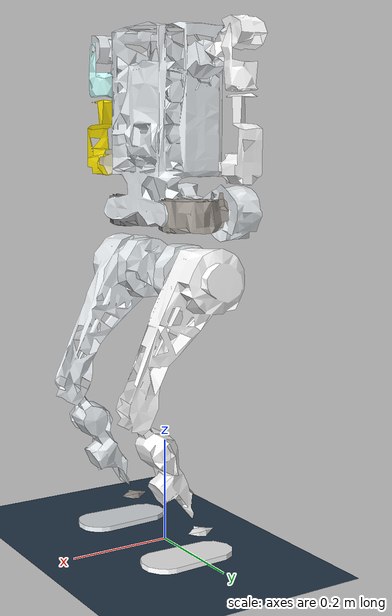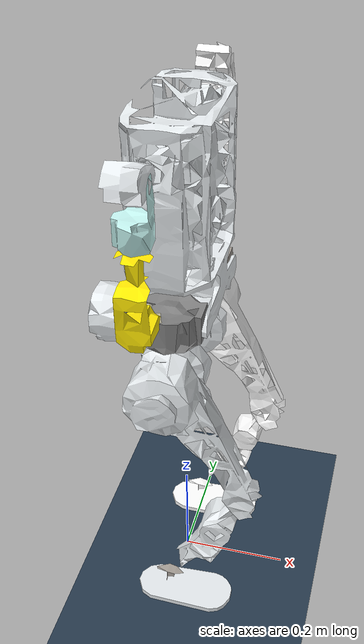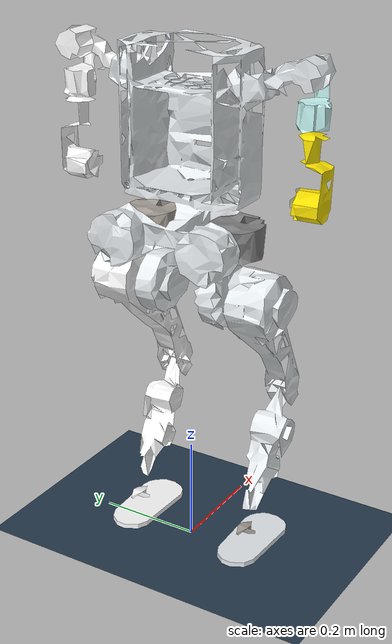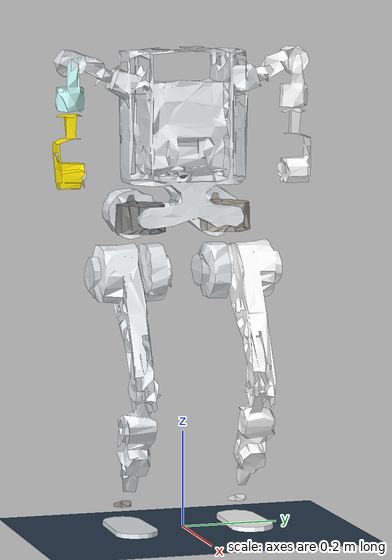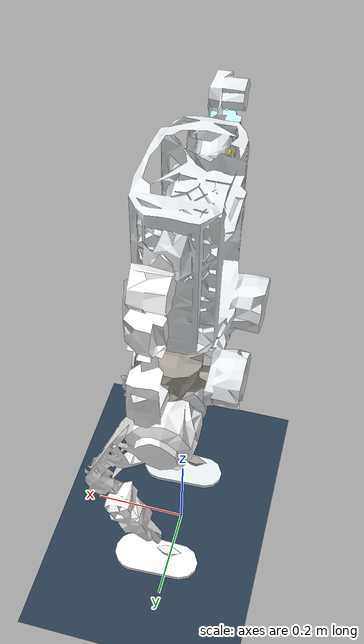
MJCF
<?xml version="1.0" ?>
<mujoco model="urdf_model">
  <default>
    <joint limited="true"/>
    <motor ctrllimited="true"/>
    <geom condim="4" contype="1" conaffinity="15" solref="0.001 2" friction="0.9 0.2 0.2"/>
    <equality solref="0.001 2"/>
  </default>
  <compiler angle="radian" coordinate="local" meshdir="meshes"/>
  <option gravity="0 0 -9.81" timestep="0.002" iterations="50" solver="Newton" tolerance="1e-10"/>
  <asset>
    <texture type="skybox" builtin="gradient" rgb1="0.3 0.5 0.7" rgb2="0 0 0" width="512" height="512"/>
    <texture name="texplane" type="2d" builtin="checker" rgb1=".2 .3 .4" rgb2=".1 0.15 0.2" width="512" height="512" mark="cross" markrgb=".8 .8 .8"/>
    <material name="matplane" reflectance="0." texture="texplane" texrepeat="1 1" texuniform="true"/>
    <mesh name="base_link.STL" file="base_link.STL"/>
    <mesh name="l_arm_shoulder_pitch_Link.STL" file="l_arm_shoulder_pitch_Link.STL"/>
    <mesh name="l_arm_shoulder_roll_Link.STL" file="l_arm_shoulder_roll_Link.STL"/>
    <mesh name="l_arm_shoulder_yaw_Link.STL" file="l_arm_shoulder_yaw_Link.STL"/>
    <mesh name="l_arm_elbow_Link.STL" file="l_arm_elbow_Link.STL"/>
    <mesh name="r_arm_shoulder_pitch_Link.STL" file="r_arm_shoulder_pitch_Link.STL"/>
    <mesh name="r_arm_shoulder_roll_Link.STL" file="r_arm_shoulder_roll_Link.STL"/>
    <mesh name="r_arm_shoulder_yaw_Link.STL" file="r_arm_shoulder_yaw_Link.STL"/>
    <mesh name="r_arm_elbow_Link.STL" file="r_arm_elbow_Link.STL"/>
    <mesh name="l_leg_hip_roll_Link.STL" file="l_leg_hip_roll_Link.STL"/>
    <mesh name="l_leg_hip_yaw_Link.STL" file="l_leg_hip_yaw_Link.STL"/>
    <mesh name="l_leg_hip_pitch_Link.STL" file="l_leg_hip_pitch_Link.STL"/>
    <mesh name="l_leg_knee_Link.STL" file="l_leg_knee_Link.STL"/>
    <mesh name="l_leg_ankle_pitch_Link.STL" file="l_leg_ankle_pitch_Link.STL"/>
    <mesh name="l_leg_ankle_roll_Link.STL" file="l_leg_ankle_roll_Link.STL"/>
    <mesh name="r_leg_hip_roll_Link.STL" file="r_leg_hip_roll_Link.STL"/>
    <mesh name="r_leg_hip_yaw_Link.STL" file="r_leg_hip_yaw_Link.STL"/>
    <mesh name="r_leg_hip_pitch_Link.STL" file="r_leg_hip_pitch_Link.STL"/>
    <mesh name="r_leg_knee_Link.STL" file="r_leg_knee_Link.STL"/>
    <mesh name="r_leg_ankle_pitch_Link.STL" file="r_leg_ankle_pitch_Link.STL"/>
    <mesh name="r_leg_ankle_roll_Link.STL" file="r_leg_ankle_roll_Link.STL"/>
  </asset>
  <worldbody>
    <geom name="floor" type="plane" pos="0.01 0 0" size="10 10 0.1" material="matplane"/>
    <light directional="true" diffuse=".4 .4 .4" specular="0.1 0.1 0.1" pos="0 0 5.0" dir="0 0 -1" castshadow="false"/>
    <light directional="true" diffuse=".6 .6 .6" specular="0.2 0.2 0.2" pos="0 0 4" dir="0 0 -1"/>
    <!-- .73 -> close to ground -->
    <body name="base_link" pos="0 0 0.73">
      <site name="imu_site" pos="0 0 0" size="0.01"/>
      <freejoint name="root"/>
      <inertial mass="5.7651" diaginertia="0.020053 0.014582 0.013124" pos="-0.026899 -1.898e-06 0.035918" quat="0 0 0 1"/>
      <geom name="base_link_visual" type="mesh" mesh="base_link.STL" rgba="0.89804 0.91765 0.92941 1"/>
      <body name="l_arm_shoulder_pitch_Link" pos="0.0 0.16535 0.20168" euler="-1.2217 0.0 0.0">
        <inertial mass="0.47485" diaginertia="0.00026491 0.00023165 0.00018067" pos="-0.0032277 -0.00090287 0.064029" quat="0 0 0 1"/>
        <geom name="l_arm_shoulder_pitch_Link_visual" type="mesh" mesh="l_arm_shoulder_pitch_Link.STL" rgba="1 1 1 1"/>
        <body name="l_arm_shoulder_roll_Link" pos="0.0 0.0 0.07625" euler="1.2217 0.0 0.0">
          <inertial mass="0.369997353872883" diaginertia="0.000197558683212289 0.00020014685176238 0.000160207650697516" pos="0.00482434461878539 -0.000218754304780355 -0.066684892346818" quat="0 0 0 1"/>
          <geom name="l_arm_shoulder_roll_Link_visual" type="mesh" mesh="l_arm_shoulder_roll_Link.STL" rgba="1 1 1 1"/>
          <body name="l_arm_shoulder_yaw_Link" pos="0.0 0.0 -0.108" euler="0.0 0.0 0.0">
            <inertial mass="0.385684351005629" diaginertia="0.000140770233725746 0.000170456017896524 0.000126959258320037" pos="-4.03282683863471e-05 0.00245809993860069 -0.0964013469128064" quat="0 0 0 1"/>
            <geom name="l_arm_shoulder_yaw_Link_visual" type="mesh" mesh="l_arm_shoulder_yaw_Link.STL" rgba="1 1 1 1"/>
            <body name="l_arm_elbow_Link" pos="0.0 -0.017 -0.11875" euler="0.0 0.0 0.0">
              <inertial mass="0.0234686345431745" diaginertia="4.69343397566853E-06 9.07836938758881E-06 5.08242714541202E-06" pos="0.000783882641962441 -0.0071164610235743 -0.000187670615894142" quat="0 0 0 1"/>
              <geom name="l_arm_elbow_Link_visual" type="mesh" mesh="l_arm_elbow_Link.STL" rgba="1 1 1 1"/>
            </body>
          </body>
        </body>
      </body>
      <body name="r_arm_shoulder_pitch_Link" pos="0.0 -0.16535 0.20168" euler="1.2217 0.0 0.0">
        <inertial mass="0.474849451126101" diaginertia="0.000264909282657534 0.000231649340648057 0.000180674893290091" pos="-0.00322766219363702 0.000902867126619522 0.0640292363653914" quat="0 0 0 1"/>
        <geom name="r_arm_shoulder_pitch_Link_visual" type="mesh" mesh="r_arm_shoulder_pitch_Link.STL" rgba="0.898039215686275 0.917647058823529 0.929411764705882 1"/>
        <body name="r_arm_shoulder_roll_Link" pos="0.0 0.0 0.07625" euler="-1.2217 0.0 0.0">
          <inertial mass="0.369997409547943" diaginertia="0.000197558689735899 0.000200146864120328 0.000160207663265554" pos="0.00482435004857312 0.000218646457870841 -0.0666848884784403" quat="0 0 0 1"/>
          <geom name="r_arm_shoulder_roll_Link_visual" type="mesh" mesh="r_arm_shoulder_roll_Link.STL" rgba="0.780392156862745 0.972549019607843 0.956862745098039 1"/>
          <body name="r_arm_shoulder_yaw_Link" pos="0.0 0.0 -0.108" euler="0.0 0.0 0.0">
            <inertial mass="0.38568" diaginertia="0.00014077 0.00017046 0.00012696" pos="-4.033e-05 -0.0024581 -0.096401" quat="0 0 0 1"/>
            <geom name="r_arm_shoulder_yaw_Link_visual" type="mesh" mesh="r_arm_shoulder_yaw_Link.STL" rgba="1 0.90588 0 1"/>
            <body name="r_arm_elbow_Link" pos="0.0 0.017 -0.11875" euler="0.0 0.0 0.0">
              <inertial mass="0.0234686345431746" diaginertia="4.69343397566855E-06 9.07836938758883E-06 5.08242714541201E-06" pos="0.000783882643357436 0.00711646102274963 -0.000187670617232349" quat="0 0 0 1"/>
              <geom name="r_arm_elbow_Link_visual" type="mesh" mesh="r_arm_elbow_Link.STL" rgba="0.972549019607843 0.945098039215686 0.780392156862745 1"/>
            </body>
          </body>
        </body>
      </body>
      <body name="l_leg_hip_roll_Link" pos="-0.0792 0.09002 -0.085" euler="0.0 0.0 0.0">
        <inertial mass="1.2237" diaginertia="0.0010875 0.0012014 0.0021103" pos="0.073997 -2.6118e-05 -0.00038831" quat="0 0 0 1"/>
        <geom name="l_leg_hip_roll_Link_visual" type="mesh" mesh="l_leg_hip_roll_Link.STL" rgba="0.64706 0.61961 0.58824 1"/>
        <joint name="l_leg_hip_roll_joint" type="hinge" axis="1.0 0.0 0.0" range="-0.3 1" damping="1" frictionloss="0.1"/>
        <body name="l_leg_hip_yaw_Link" pos="0.0815 0.0 -0.0375" euler="0.0 0.0 0.0">
          <inertial mass="1.5439" diaginertia="0.0016181 0.0028764 0.0014519" pos="0.00018298 -0.018275 -0.069994" quat="0 0 0 1"/>
          <geom name="l_leg_hip_yaw_Link_visual" type="mesh" mesh="l_leg_hip_yaw_Link.STL" rgba="0.89804 0.91765 0.92941 1"/>
          <joint name="l_leg_hip_yaw_joint" type="hinge" axis="0.0 0.0 1.0" range="-0.75 1.05" damping="1" frictionloss="0.1"/>
          <body name="l_leg_hip_pitch_Link" pos="0.0 0.0 -0.076" euler="0.0 -0.5235987755982988 0.0">
            <inertial mass="2.63780166885626" diaginertia="0.0128050639410327 0.0146659167630542 0.00218142025359868" pos="0.00263050346808996 0.0505924691116392 -0.0509281264870309" quat="0 0 0 1"/>
            <geom name="l_leg_hip_pitch_Link_visual" type="mesh" mesh="l_leg_hip_pitch_Link.STL" rgba="1 1 1 1"/>
            <joint name="l_leg_hip_pitch_joint" type="hinge" axis="0.0 1.0 0.0" range="-0.98 2.02" damping="1" frictionloss="0.1"/>
            <body name="l_leg_knee_Link" pos="0.0 0.032659 -0.27" euler="0.0 1.0471975511965976 0.0">
              <inertial mass="1.34567623230749" diaginertia="0.00225057945909996 0.0022436430421998 0.000463767068680579" pos="0.00266770031269203 0.00221957096227114 -0.128036168256414" quat="0 0 0 1"/>
              <geom name="l_leg_knee_Link_visual" type="mesh" mesh="l_leg_knee_Link.STL" rgba="1 1 1 1"/>
              <joint name="l_leg_knee_joint" type="hinge" axis="0.0 1.0 0.0" range="-0.96 0.96" damping="1" frictionloss="0.1"/>
              <body name="l_leg_ankle_pitch_Link" pos="0.0 0.0 -0.28" euler="0.0 -0.5235987755982988 0.0">
                <inertial mass="0.0899541151447192" diaginertia="1.16237302815817E-05 1.42974136786799E-05 2.19294687658168E-05" pos="0.0010416057050221 3.86596726853483e-09 -9.72771641016834e-10" quat="0 0 0 1"/>
                <geom name="l_leg_ankle_pitch_Link_visual" type="mesh" mesh="l_leg_ankle_pitch_Link.STL" rgba="1 1 1 1"/>
                <joint name="l_leg_ankle_pitch_joint" type="hinge" axis="0.0 1.0 0.0" range="-0.28 1.08" damping="1" frictionloss="0.1"/>
                <body name="l_leg_ankle_roll_Link" pos="0.0 0.0 0.0" euler="0.0 0.0 0.0">
                  <inertial mass="0.442108383473458" diaginertia="0.000179440452962887 0.000724129860482909 0.000870339094674059" pos="0.00956351706341918 2.52051269337139e-05 -0.0277821418441356" quat="0 0 0 1"/>
                  <geom name="l_leg_ankle_roll_Link_visual" type="mesh" mesh="l_leg_ankle_roll_Link.STL" rgba="1 1 1 1"/>
                  <joint name="l_leg_ankle_roll_joint" type="hinge" axis="1.0 0.0 0.0" range="-0.5 0.5" damping="1" frictionloss="0.1"/>
                </body>
              </body>
            </body>
          </body>
        </body>
      </body>
      <body name="r_leg_hip_roll_Link" pos="-0.0792 -0.08998 -0.085" euler="0.0 0.0 0.0">
        <inertial mass="1.2237" diaginertia="0.0010875 0.0012014 0.0021103" pos="0.073997 -2.6118e-05 -0.00038831" quat="0 0 0 1"/>
        <geom name="r_leg_hip_roll_Link_visual" type="mesh" mesh="r_leg_hip_roll_Link.STL" rgba="0.49804 0.49804 0.49804 1"/>
        <joint name="r_leg_hip_roll_joint" type="hinge" axis="1.0 0.0 0.0" range="-1 0.3" damping="1" frictionloss="0.1"/>
        <body name="r_leg_hip_yaw_Link" pos="0.0815 0.0 -0.0375" euler="0.0 0.0 0.0">
          <inertial mass="1.5439" diaginertia="0.0016183 0.0028766 0.0014515" pos="0.00023924 0.018241 -0.069997" quat="0 0 0 1"/>
          <geom name="r_leg_hip_yaw_Link_visual" type="mesh" mesh="r_leg_hip_yaw_Link.STL" rgba="0.89804 0.91765 0.92941 1"/>
          <joint name="r_leg_hip_yaw_joint" type="hinge" axis="0.0 0.0 1.0" range="-1.05 0.75" damping="1" frictionloss="0.1"/>
          <body name="r_leg_hip_pitch_Link" pos="0.0 0.0 -0.076" euler="0.0 -0.5235987755982988 0.0">
            <inertial mass="2.63780166885626" diaginertia="0.0128050639410327 0.0146659167630542 0.00218142025359868" pos="0.00263050346808996 -0.0505924691116392 -0.0509281264870309" quat="0 0 0 1"/>
            <geom name="r_leg_hip_pitch_Link_visual" type="mesh" mesh="r_leg_hip_pitch_Link.STL" rgba="0.89804 0.91765 0.92941 1"/>
            <joint name="r_leg_hip_pitch_joint" type="hinge" axis="0.0 1.0 0.0" range="-0.98 2.02" damping="1" frictionloss="0.1"/>
            <body name="r_leg_knee_Link" pos="0.0 -0.0327 -0.27" euler="0.0 1.0471975511965976 0.0">
              <inertial mass="1.3457" diaginertia="0.0022506 0.0022436 0.00046377" pos="0.0026677 -0.0022197 -0.12804" quat="0 0 0 1"/>
              <geom name="r_leg_knee_Link_visual" type="mesh" mesh="r_leg_knee_Link.STL" rgba="0.89804 0.91765 0.92941 1"/>
              <joint name="r_leg_knee_joint" type="hinge" axis="0.0 1.0 0.0" range="-0.96 0.96" damping="1" frictionloss="0.1"/>
              <body name="r_leg_ankle_pitch_Link" pos="0.0 0.0 -0.28" euler="0.0 -0.5235987755982988 0.0">
                <inertial mass="0.089954" diaginertia="1.1624E-05 1.4297E-05 2.1929E-05" pos="0.0010416 -3.8669e-09 -9.735e-10" quat="0 0 0 1"/>
                <geom name="r_leg_ankle_pitch_Link_visual" type="mesh" mesh="r_leg_ankle_pitch_Link.STL" rgba="0.64706 0.61961 0.58824 1"/>
                <joint name="r_leg_ankle_pitch_joint" type="hinge" axis="0.0 1.0 0.0" range="-0.28 1.08" damping="1" frictionloss="0.1"/>
                <body name="r_leg_ankle_roll_Link" pos="0.0 0.0 0.0" euler="0.0 0.0 0.0">
                  <inertial mass="0.44211" diaginertia="0.00017944 0.00072413 0.00087034" pos="0.0095635 -2.5209e-05 -0.027782" quat="0 0 0 1"/>
                  <geom name="r_leg_ankle_roll_Link_visual" type="mesh" mesh="r_leg_ankle_roll_Link.STL" rgba="0.89804 0.91765 0.92941 1"/>
                  <joint name="r_leg_ankle_roll_joint" type="hinge" axis="1.0 0.0 0.0" range="-0.5 0.5" damping="1" frictionloss="0.1"/>
                </body>
              </body>
            </body>
          </body>
        </body>
      </body>
    </body>
  </worldbody>
  <actuator>
    <motor name="motor_l_leg_hip_roll_joint" joint="l_leg_hip_roll_joint" gear="100" ctrlrange="-1 1"/>
    <motor name="motor_l_leg_hip_yaw_joint" joint="l_leg_hip_yaw_joint" gear="100" ctrlrange="-1 1"/>
    <motor name="motor_l_leg_hip_pitch_joint" joint="l_leg_hip_pitch_joint" gear="100" ctrlrange="-1 1"/>
    <motor name="motor_l_leg_knee_joint" joint="l_leg_knee_joint" gear="100" ctrlrange="-1 1"/>
    <motor name="motor_l_leg_ankle_pitch_joint" joint="l_leg_ankle_pitch_joint" gear="100" ctrlrange="-1 1"/>
    <motor name="motor_l_leg_ankle_roll_joint" joint="l_leg_ankle_roll_joint" gear="100" ctrlrange="-1 1"/>
    <motor name="motor_r_leg_hip_roll_joint" joint="r_leg_hip_roll_joint" gear="100" ctrlrange="-1 1"/>
    <motor name="motor_r_leg_hip_yaw_joint" joint="r_leg_hip_yaw_joint" gear="100" ctrlrange="-1 1"/>
    <motor name="motor_r_leg_hip_pitch_joint" joint="r_leg_hip_pitch_joint" gear="100" ctrlrange="-1 1"/>
    <motor name="motor_r_leg_knee_joint" joint="r_leg_knee_joint" gear="100" ctrlrange="-1 1"/>
    <motor name="motor_r_leg_ankle_pitch_joint" joint="r_leg_ankle_pitch_joint" gear="100" ctrlrange="-1 1"/>
    <motor name="motor_r_leg_ankle_roll_joint" joint="r_leg_ankle_roll_joint" gear="100" ctrlrange="-1 1"/>
  </actuator>
  <sensor>
    <actuatorpos name="l_leg_hip_roll_joint_pos" actuator="motor_l_leg_hip_roll_joint"/>
    <actuatorvel name="l_leg_hip_roll_joint_vel" actuator="motor_l_leg_hip_roll_joint"/>
    <actuatorfrc name="l_leg_hip_roll_joint_frc" actuator="motor_l_leg_hip_roll_joint"/>
    <actuatorpos name="l_leg_hip_yaw_joint_pos" actuator="motor_l_leg_hip_yaw_joint"/>
    <actuatorvel name="l_leg_hip_yaw_joint_vel" actuator="motor_l_leg_hip_yaw_joint"/>
    <actuatorfrc name="l_leg_hip_yaw_joint_frc" actuator="motor_l_leg_hip_yaw_joint"/>
    <actuatorpos name="l_leg_hip_pitch_joint_pos" actuator="motor_l_leg_hip_pitch_joint"/>
    <actuatorvel name="l_leg_hip_pitch_joint_vel" actuator="motor_l_leg_hip_pitch_joint"/>
    <actuatorfrc name="l_leg_hip_pitch_joint_frc" actuator="motor_l_leg_hip_pitch_joint"/>
    <actuatorpos name="l_leg_knee_joint_pos" actuator="motor_l_leg_knee_joint"/>
    <actuatorvel name="l_leg_knee_joint_vel" actuator="motor_l_leg_knee_joint"/>
    <actuatorfrc name="l_leg_knee_joint_frc" actuator="motor_l_leg_knee_joint"/>
    <actuatorpos name="l_leg_ankle_pitch_joint_pos" actuator="motor_l_leg_ankle_pitch_joint"/>
    <actuatorvel name="l_leg_ankle_pitch_joint_vel" actuator="motor_l_leg_ankle_pitch_joint"/>
    <actuatorfrc name="l_leg_ankle_pitch_joint_frc" actuator="motor_l_leg_ankle_pitch_joint"/>
    <actuatorpos name="l_leg_ankle_roll_joint_pos" actuator="motor_l_leg_ankle_roll_joint"/>
    <actuatorvel name="l_leg_ankle_roll_joint_vel" actuator="motor_l_leg_ankle_roll_joint"/>
    <actuatorfrc name="l_leg_ankle_roll_joint_frc" actuator="motor_l_leg_ankle_roll_joint"/>
    <actuatorpos name="r_leg_hip_roll_joint_pos" actuator="motor_r_leg_hip_roll_joint"/>
    <actuatorvel name="r_leg_hip_roll_joint_vel" actuator="motor_r_leg_hip_roll_joint"/>
    <actuatorfrc name="r_leg_hip_roll_joint_frc" actuator="motor_r_leg_hip_roll_joint"/>
    <actuatorpos name="r_leg_hip_yaw_joint_pos" actuator="motor_r_leg_hip_yaw_joint"/>
    <actuatorvel name="r_leg_hip_yaw_joint_vel" actuator="motor_r_leg_hip_yaw_joint"/>
    <actuatorfrc name="r_leg_hip_yaw_joint_frc" actuator="motor_r_leg_hip_yaw_joint"/>
    <actuatorpos name="r_leg_hip_pitch_joint_pos" actuator="motor_r_leg_hip_pitch_joint"/>
    <actuatorvel name="r_leg_hip_pitch_joint_vel" actuator="motor_r_leg_hip_pitch_joint"/>
    <actuatorfrc name="r_leg_hip_pitch_joint_frc" actuator="motor_r_leg_hip_pitch_joint"/>
    <actuatorpos name="r_leg_knee_joint_pos" actuator="motor_r_leg_knee_joint"/>
    <actuatorvel name="r_leg_knee_joint_vel" actuator="motor_r_leg_knee_joint"/>
    <actuatorfrc name="r_leg_knee_joint_frc" actuator="motor_r_leg_knee_joint"/>
    <actuatorpos name="r_leg_ankle_pitch_joint_pos" actuator="motor_r_leg_ankle_pitch_joint"/>
    <actuatorvel name="r_leg_ankle_pitch_joint_vel" actuator="motor_r_leg_ankle_pitch_joint"/>
    <actuatorfrc name="r_leg_ankle_pitch_joint_frc" actuator="motor_r_leg_ankle_pitch_joint"/>
    <actuatorpos name="r_leg_ankle_roll_joint_pos" actuator="motor_r_leg_ankle_roll_joint"/>
    <actuatorvel name="r_leg_ankle_roll_joint_vel" actuator="motor_r_leg_ankle_roll_joint"/>
    <actuatorfrc name="r_leg_ankle_roll_joint_frc" actuator="motor_r_leg_ankle_roll_joint"/>
    <framequat name="orientation" objtype="site" objname="imu_site"/>
    <framepos name="position" objtype="site" objname="imu_site"/>
    <gyro name="angular_velocity" site="imu_site"/>
    <velocimeter name="linear_velocity" site="imu_site"/>
    <accelerometer name="linear_acceleration" site="imu_site"/>
    <magnetometer name="magnetometer" site="imu_site"/>
  </sensor>
</mujoco>
